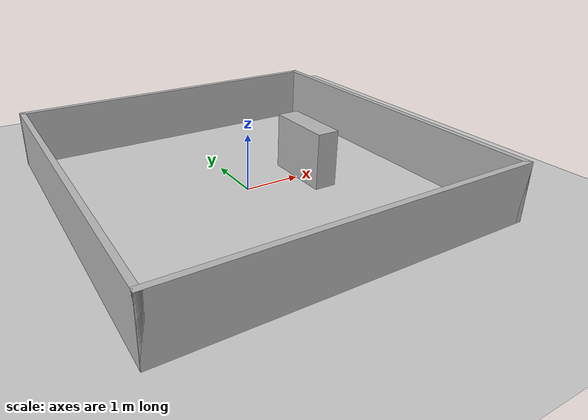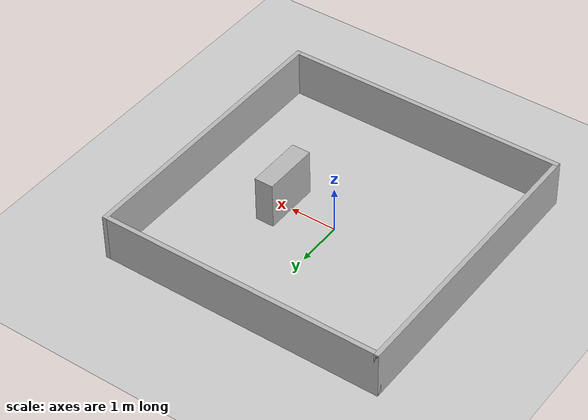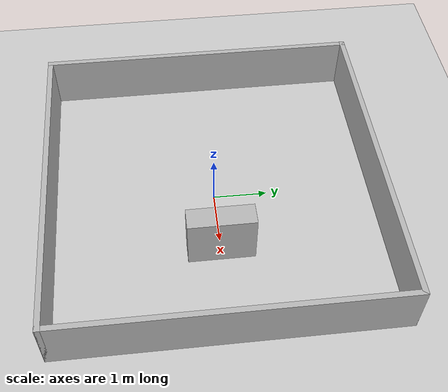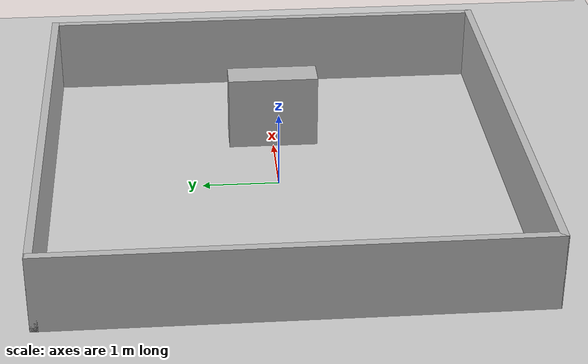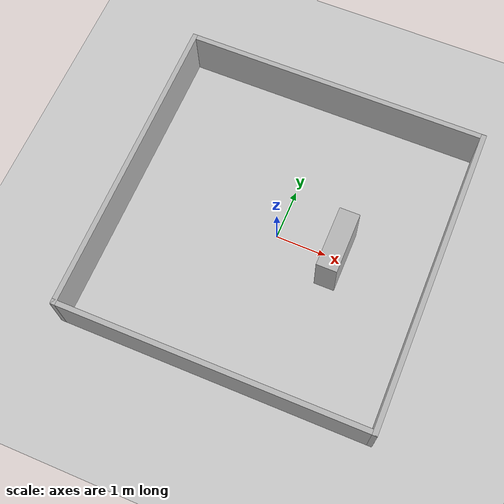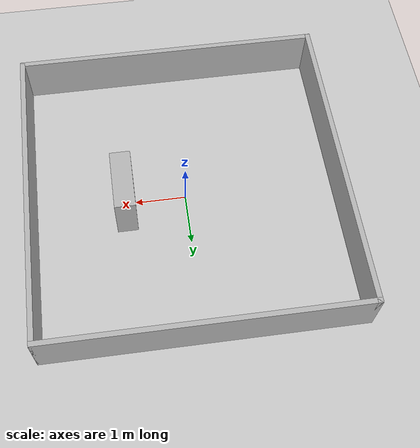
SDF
<?xml version="1.0"?>
<sdf version="1.8">
  <world name="default">
    <physics name="3ms" type="ignored">
      <max_step_size>0.003</max_step_size>
      <real_time_factor>1.0</real_time_factor>
      <real_time_update_rate>200</real_time_update_rate>
    </physics>

    <plugin filename="ignition-gazebo-physics-system"
            name="ignition::gazebo::systems::Physics"/>
    <plugin filename="ignition-gazebo-user-commands-system"
            name="ignition::gazebo::systems::UserCommands"/>
    <plugin filename="ignition-gazebo-scene-broadcaster-system"
            name="ignition::gazebo::systems::SceneBroadcaster"/>
    <!-- Contact system: enables contact force reporting (improves grasp detection) -->
    <plugin filename="ignition-gazebo-contact-system"
            name="ignition::gazebo::systems::Contact"/>
    <!-- Sensors system: required for gpu_lidar / cameras to actually ray-cast and publish -->
    <plugin filename="ignition-gazebo-sensors-system"
            name="ignition::gazebo::systems::Sensors">
      <render_engine>ogre2</render_engine>
    </plugin>

    <light name="sun" type="directional">
      <cast_shadows>true</cast_shadows>
      <pose>0 0 10 0 0 0</pose>
      <diffuse>0.8 0.8 0.8 1</diffuse>
      <specular>0.2 0.2 0.2 1</specular>
      <attenuation>
        <range>1000</range>
        <constant>0.9</constant>
        <linear>0.01</linear>
        <quadratic>0.001</quadratic>
      </attenuation>
      <direction>-0.5 0.1 -0.9</direction>
    </light>

    <model name="ground_plane">
      <static>true</static>
      <link name="link">
        <collision name="collision">
          <geometry>
            <plane>
              <normal>0 0 1</normal>
              <size>100 100</size>
            </plane>
          </geometry>
          <surface>
            <friction>
              <ode>
                <mu>1.0</mu>
                <mu2>1.0</mu2>
              </ode>
            </friction>
            <contact>
              <ode>
                <kp>1e8</kp>
                <kd>1e2</kd>
              </ode>
            </contact>
          </surface>
        </collision>
        <visual name="visual">
          <geometry>
            <plane>
              <normal>0 0 1</normal>
              <size>100 100</size>
            </plane>
          </geometry>
          <material>
            <ambient>0.8 0.8 0.8 1</ambient>
            <diffuse>0.8 0.8 0.8 1</diffuse>
            <specular>0.8 0.8 0.8 1</specular>
          </material>
        </visual>
      </link>
    </model>

    <model name="north_wall">
      <static>true</static>
      <pose>0 3 0.5 0 0 0</pose>
      <link name="link">
        <collision name="collision"><geometry><box><size>6.1 0.1 1.0</size></box></geometry></collision>
        <visual name="visual"><geometry><box><size>6.1 0.1 1.0</size></box></geometry></visual>
      </link>
    </model>
    <model name="south_wall">
      <static>true</static>
      <pose>0 -3 0.5 0 0 0</pose>
      <link name="link">
        <collision name="collision"><geometry><box><size>6.1 0.1 1.0</size></box></geometry></collision>
        <visual name="visual"><geometry><box><size>6.1 0.1 1.0</size></box></geometry></visual>
      </link>
    </model>
    <model name="east_wall">
      <static>true</static>
      <pose>3 0 0.5 0 0 0</pose>
      <link name="link">
        <collision name="collision"><geometry><box><size>0.1 6.1 1.0</size></box></geometry></collision>
        <visual name="visual"><geometry><box><size>0.1 6.1 1.0</size></box></geometry></visual>
      </link>
    </model>
    <model name="west_wall">
      <static>true</static>
      <pose>-3 0 0.5 0 0 0</pose>
      <link name="link">
        <collision name="collision"><geometry><box><size>0.1 6.1 1.0</size></box></geometry></collision>
        <visual name="visual"><geometry><box><size>0.1 6.1 1.0</size></box></geometry></visual>
      </link>
    </model>
    <model name="center_obstacle">
      <static>true</static>
      <pose>1.2 0 0.5 0 0 0</pose>
      <link name="link">
        <collision name="collision"><geometry><box><size>0.4 1.2 1.0</size></box></geometry></collision>
        <visual name="visual"><geometry><box><size>0.4 1.2 1.0</size></box></geometry></visual>
      </link>
    </model>
  </world>
</sdf>
